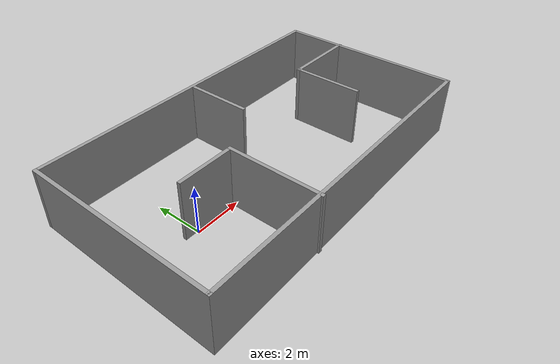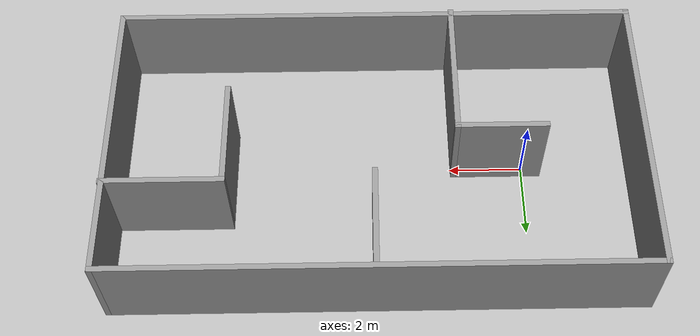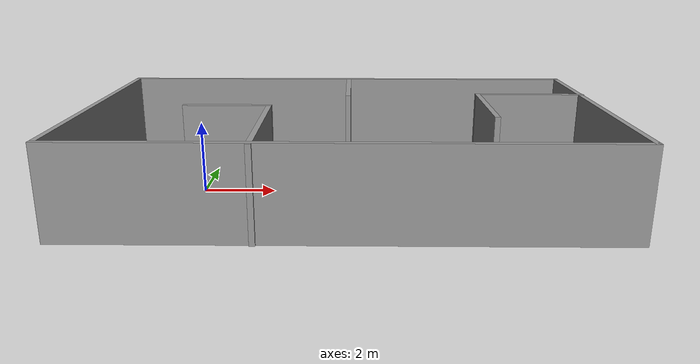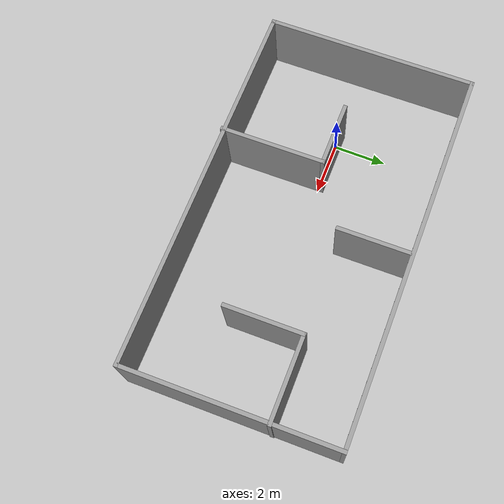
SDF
<?xml version='1.0'?>
<sdf version='1.6'>
  <model name='210224'>
    <pose frame=''>4.04596 0.240908 0 0 -0 0</pose>
    <link name='Wall_0'>
      <collision name='Wall_0_Collision'>
        <geometry>
          <box>
            <size>14.25 0.15 2.5</size>
          </box>
        </geometry>
        <pose frame=''>0 0 1.25 0 -0 0</pose>
      </collision>
      <visual name='Wall_0_Visual'>
        <pose frame=''>0 0 1.25 0 -0 0</pose>
        <geometry>
          <box>
            <size>14.25 0.15 2.5</size>
          </box>
        </geometry>
        <material>
          <script>
            <uri>file://media/materials/scripts/gazebo.material</uri>
            <name>Gazebo/Grey</name>
          </script>
          <ambient>1 1 1 1</ambient>
        </material>
      </visual>
      <pose frame=''>-0.01596 -3.89091 0 0 -0 0</pose>
    </link>
    <link name='Wall_1'>
      <collision name='Wall_1_Collision'>
        <geometry>
          <box>
            <size>8 0.15 2.5</size>
          </box>
        </geometry>
        <pose frame=''>0 0 1.25 0 -0 0</pose>
      </collision>
      <visual name='Wall_1_Visual'>
        <pose frame=''>0 0 1.25 0 -0 0</pose>
        <geometry>
          <box>
            <size>8 0.15 2.5</size>
          </box>
        </geometry>
        <material>
          <script>
            <uri>file://media/materials/scripts/gazebo.material</uri>
            <name>Gazebo/Grey</name>
          </script>
          <ambient>1 1 1 1</ambient>
        </material>
      </visual>
      <pose frame=''>7.03404 0.034092 0 0 -0 1.5708</pose>
    </link>
    <link name='Wall_11'>
      <collision name='Wall_11_Collision'>
        <geometry>
          <box>
            <size>3.25 0.15 2.5</size>
          </box>
        </geometry>
        <pose frame=''>0 0 1.25 0 -0 0</pose>
      </collision>
      <visual name='Wall_11_Visual'>
        <pose frame=''>0 0 1.25 0 -0 0</pose>
        <geometry>
          <box>
            <size>3.25 0.15 2.5</size>
          </box>
        </geometry>
        <material>
          <script>
            <uri>file://media/materials/scripts/gazebo.material</uri>
            <name>Gazebo/Grey</name>
          </script>
          <ambient>1 1 1 1</ambient>
        </material>
      </visual>
      <pose frame=''>5.51596 1.45538 0 0 -0 3.14159</pose>
    </link>
    <link name='Wall_12'>
      <collision name='Wall_12_Collision'>
        <geometry>
          <box>
            <size>3 0.15 2.5</size>
          </box>
        </geometry>
        <pose frame=''>0 0 1.25 0 -0 0</pose>
      </collision>
      <visual name='Wall_12_Visual'>
        <pose frame=''>0 0 1.25 0 -0 0</pose>
        <geometry>
          <box>
            <size>3 0.15 2.5</size>
          </box>
        </geometry>
        <material>
          <script>
            <uri>file://media/materials/scripts/gazebo.material</uri>
            <name>Gazebo/Grey</name>
          </script>
          <ambient>1 1 1 1</ambient>
        </material>
      </visual>
      <pose frame=''>3.96596 0.030378 0 0 0 -1.5708</pose>
    </link>
    <link name='Wall_2'>
      <collision name='Wall_2_Collision'>
        <geometry>
          <box>
            <size>14.25 0.15 2.5</size>
          </box>
        </geometry>
        <pose frame=''>0 0 1.25 0 -0 0</pose>
      </collision>
      <visual name='Wall_2_Visual'>
        <pose frame=''>0 0 1.25 0 -0 0</pose>
        <geometry>
          <box>
            <size>14.25 0.15 2.5</size>
          </box>
        </geometry>
        <material>
          <script>
            <uri>file://media/materials/scripts/gazebo.material</uri>
            <name>Gazebo/Grey</name>
          </script>
          <ambient>1 1 1 1</ambient>
        </material>
      </visual>
      <pose frame=''>-0.01596 3.95909 0 0 -0 3.14159</pose>
    </link>
    <link name='Wall_24'>
      <collision name='Wall_24_Collision'>
        <geometry>
          <box>
            <size>4 0.15 2.5</size>
          </box>
        </geometry>
        <pose frame=''>0 0 1.25 0 -0 0</pose>
      </collision>
      <visual name='Wall_24_Visual'>
        <pose frame=''>0 0 1.25 0 -0 0</pose>
        <geometry>
          <box>
            <size>4 0.15 2.5</size>
          </box>
        </geometry>
        <material>
          <script>
            <uri>file://media/materials/scripts/gazebo.material</uri>
            <name>Gazebo/Grey</name>
          </script>
          <ambient>1 1 1 1</ambient>
        </material>
      </visual>
      <pose frame=''>-2.1417 -2.03409 0 0 -0 1.5708</pose>
    </link>
    <link name='Wall_25'>
      <collision name='Wall_25_Collision'>
        <geometry>
          <box>
            <size>2.5 0.15 2.5</size>
          </box>
        </geometry>
        <pose frame=''>0 0 1.25 0 -0 0</pose>
      </collision>
      <visual name='Wall_25_Visual'>
        <pose frame=''>0 0 1.25 0 -0 0</pose>
        <geometry>
          <box>
            <size>2.5 0.15 2.5</size>
          </box>
        </geometry>
        <material>
          <script>
            <uri>file://media/materials/scripts/gazebo.material</uri>
            <name>Gazebo/Grey</name>
          </script>
          <ambient>1 1 1 1</ambient>
        </material>
      </visual>
      <pose frame=''>-3.3167 -0.109092 0 0 -0 3.14159</pose>
    </link>
    <link name='Wall_4'>
      <collision name='Wall_4_Collision'>
        <geometry>
          <box>
            <size>8 0.15 2.5</size>
          </box>
        </geometry>
        <pose frame=''>0 0 1.25 0 -0 0</pose>
      </collision>
      <visual name='Wall_4_Visual'>
        <pose frame=''>0 0 1.25 0 -0 0</pose>
        <geometry>
          <box>
            <size>8 0.15 2.5</size>
          </box>
        </geometry>
        <material>
          <script>
            <uri>file://media/materials/scripts/gazebo.material</uri>
            <name>Gazebo/Grey</name>
          </script>
          <ambient>1 1 1 1</ambient>
        </material>
      </visual>
      <pose frame=''>-7.06596 0.034092 0 0 0 -1.5708</pose>
    </link>
    <link name='Wall_8'>
      <collision name='Wall_8_Collision'>
        <geometry>
          <box>
            <size>2.75 0.15 2.5</size>
          </box>
        </geometry>
        <pose frame=''>0 0 1.25 0 -0 0</pose>
      </collision>
      <visual name='Wall_8_Visual'>
        <pose frame=''>0 0 1.25 0 -0 0</pose>
        <geometry>
          <box>
            <size>2.75 0.15 2.5</size>
          </box>
        </geometry>
        <material>
          <script>
            <uri>file://media/materials/scripts/gazebo.material</uri>
            <name>Gazebo/Grey</name>
          </script>
          <ambient>1 1 1 1</ambient>
        </material>
      </visual>
      <pose frame=''>0.060798 2.54142 0 0 0 -1.5708</pose>
    </link>
    <static>1</static>
  </model>
</sdf>
